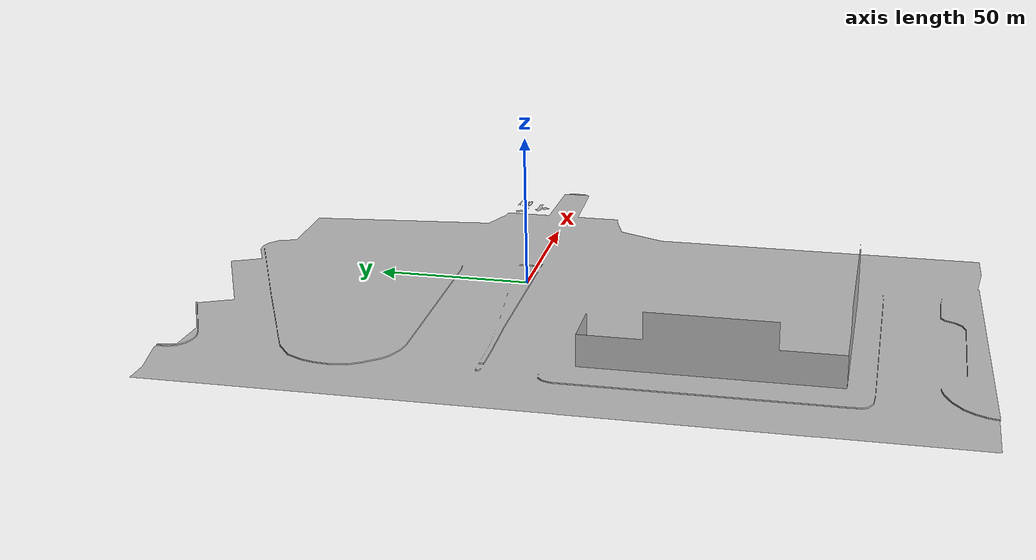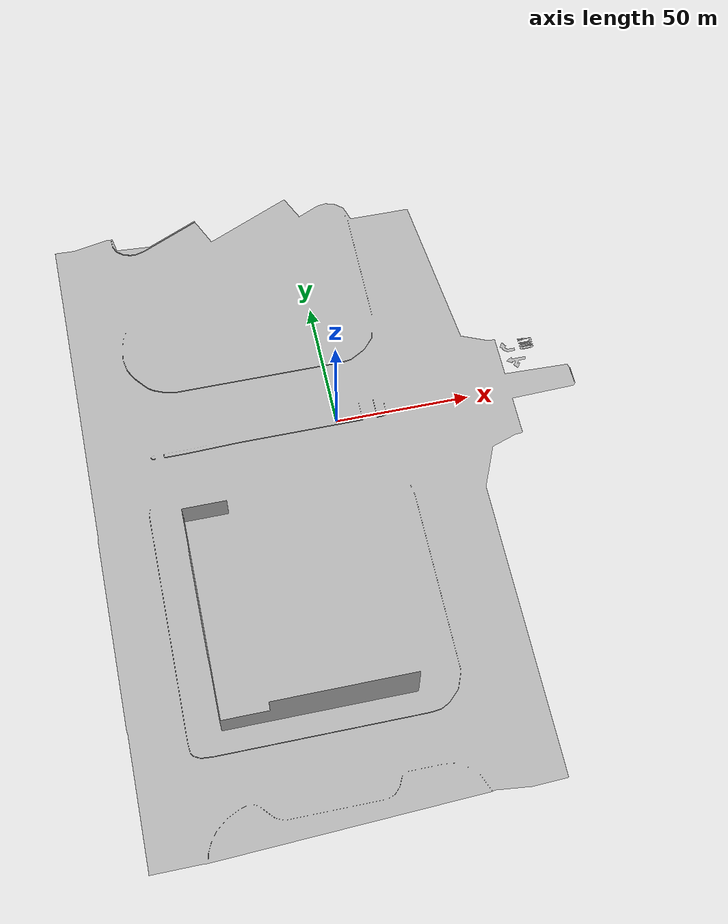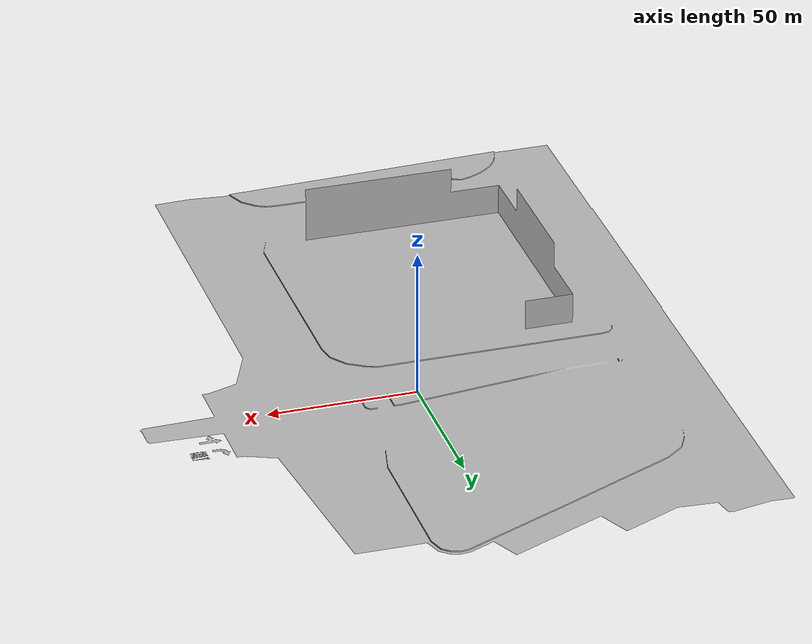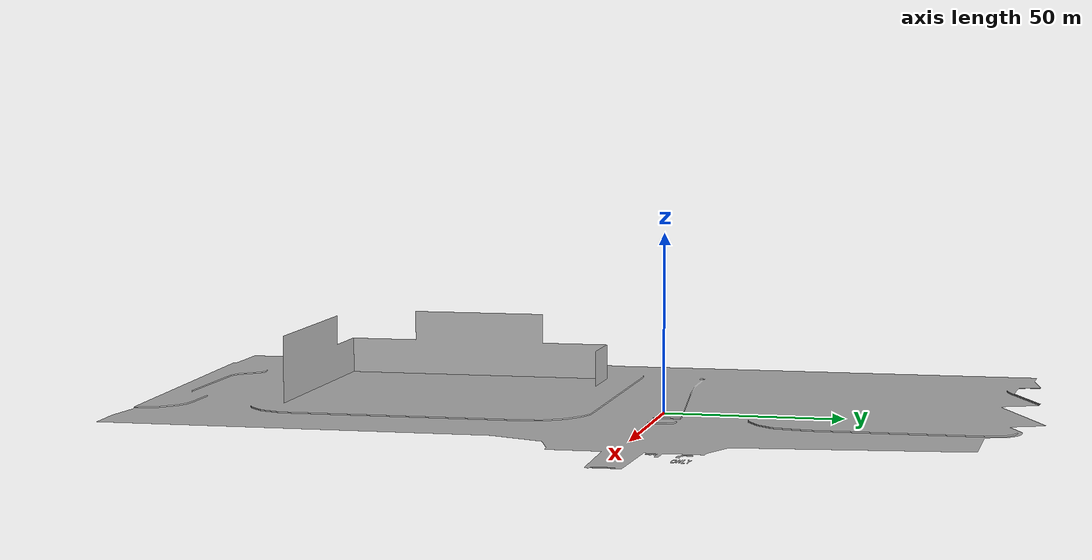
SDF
<?xml version="1.0" ?>
<sdf version="1.6">
  <model name="mcity">
    <static>true</static>
    <link name="link">
      <collision name="collision">
        <geometry>
          <mesh>
            <scale>0.254 0.254 0.254</scale>
            <uri>model://mcity/meshes/my.obj</uri>
          </mesh>
        </geometry>
      </collision>

      <visual name="visual">
        <geometry>
          <mesh>
            <scale>0.254 0.254 0.254</scale>
            <uri>model://mcity/meshes/my.obj</uri>
          </mesh>
        </geometry>
      </visual>
    </link>
  </model>
</sdf>
